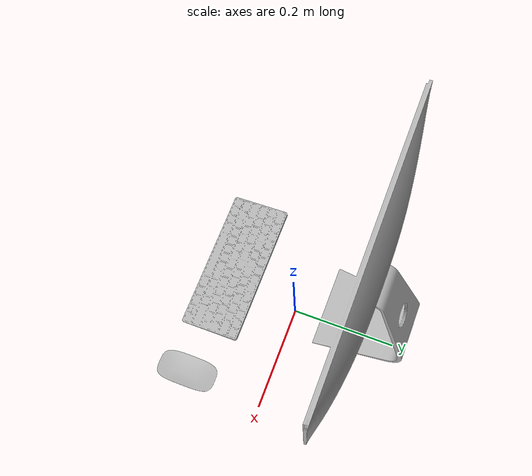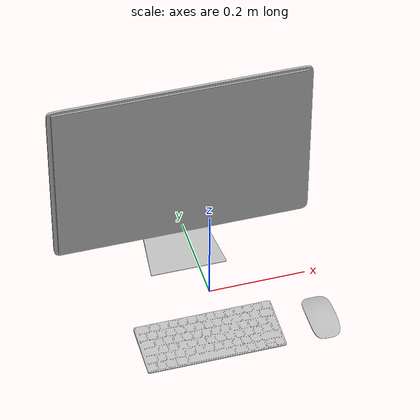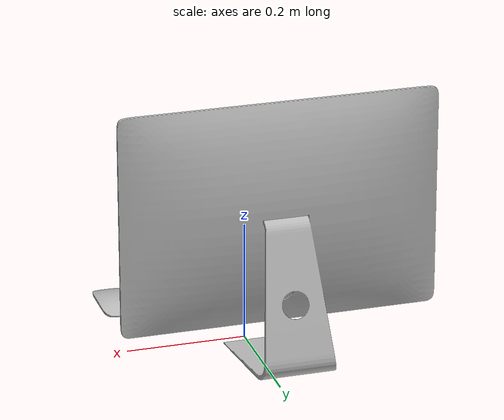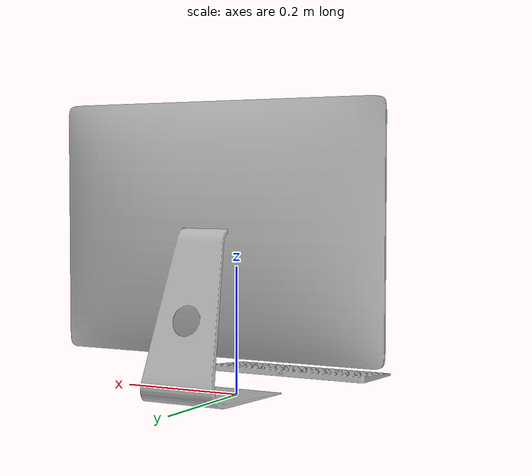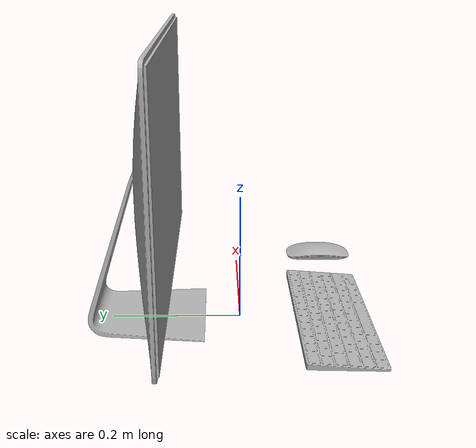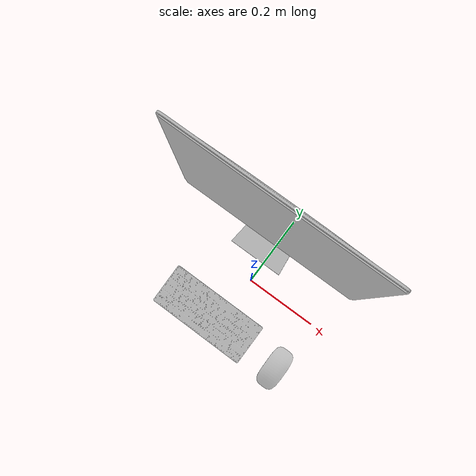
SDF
<?xml version="1.0" ?>
<sdf version="1.6">
  <model name="Computer">
    <static>true</static>
    <link name="link">
      <collision name="collision">
        <geometry>
          <mesh>
            <scale>1 1 1</scale>
            <uri>model://Computer/meshes/Computer.dae</uri>
          </mesh>
        </geometry>
      </collision>
      <visual name="visual">
        <geometry>
          <mesh>
            <scale>1 1 1</scale>
            <uri>model://Computer/meshes/Computer.dae</uri>
          </mesh>
        </geometry>
      </visual>
    </link>
  </model>
</sdf>
